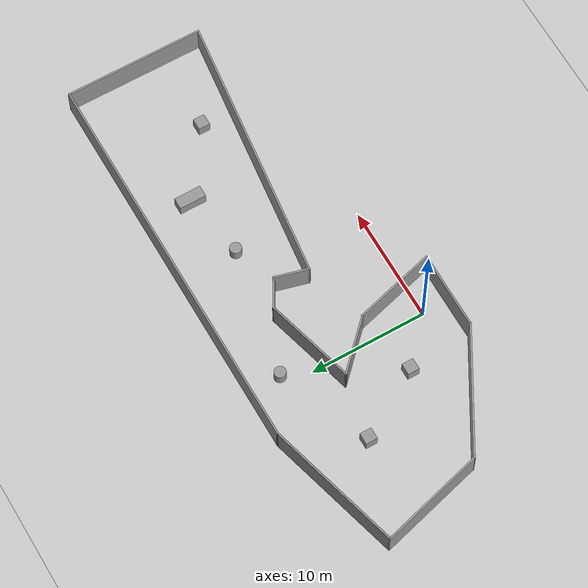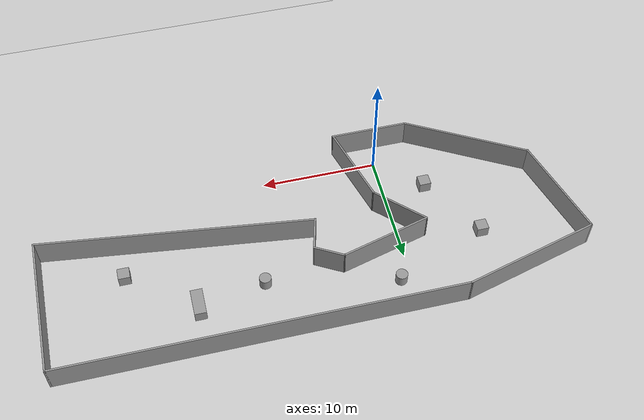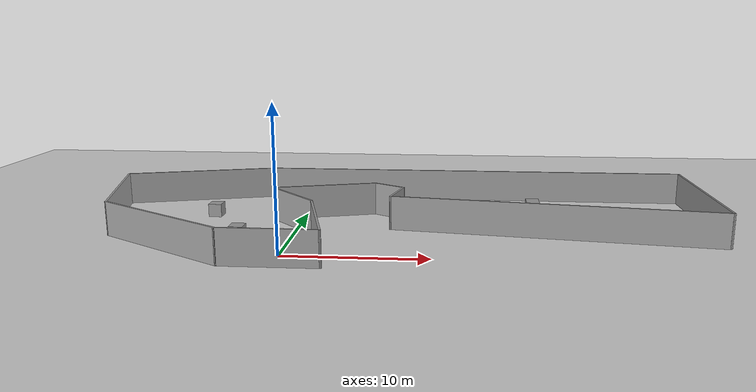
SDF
<sdf version="1.7">
 <world name="default">
  <light name="sun" type="directional">
   <pose>0 0 10 0 -0 0</pose>
   <diffuse>0.8 0.8 0.8 1</diffuse>
   <specular>0.2 0.2 0.2 1</specular>
   <attenuation>
    <range>1000</range>
    <constant>0.9</constant>
    <linear>0.01</linear>
    <quadratic>0.001</quadratic>
   </attenuation>
   <direction>-0.5 0.1 -0.9</direction>
   <spot><inner_angle>0</inner_angle><outer_angle>0</outer_angle><falloff>0</falloff></spot>
  </light>
  <model name="ground_plane">
   <static>1</static>
   <link name="link">
    <collision name="collision">
     <geometry><plane><normal>0 0 1</normal><size>100 100</size></plane></geometry>
     <surface>
      <contact><collide_bitmask>65535</collide_bitmask></contact>
      <friction><ode><mu>100</mu><mu2>50</mu2></ode></friction>
     </surface>
    </collision>
    <visual name="visual">
     <cast_shadows>0</cast_shadows>
     <geometry><plane><normal>0 0 1</normal><size>100 100</size></plane></geometry>
     <material>
      <script><uri>file://media/materials/scripts/gazebo.material</uri><name>Gazebo/Grey</name></script>
     </material>
    </visual>
   </link>
  </model>
  <gravity>0 0 -9.8</gravity>
  <magnetic_field>6e-06 2.3e-05 -4.2e-05</magnetic_field>
  <atmosphere type="adiabatic"/>
  <physics type="ode">
   <max_step_size>0.002</max_step_size>
   <real_time_factor>1</real_time_factor>
   <real_time_update_rate>500</real_time_update_rate>
  </physics>
  <scene><ambient>0.4 0.4 0.4 1</ambient><background>0.7 0.7 0.7 1</background><shadows>false</shadows></scene>
  <audio><device>default</device></audio>
  <spherical_coordinates>
   <surface_model>EARTH_WGS84</surface_model>
   <latitude_deg>0</latitude_deg>
   <longitude_deg>0</longitude_deg>
   <elevation>0</elevation>
   <heading_deg>0</heading_deg>
  </spherical_coordinates>
  <model name="Untitled">
   <pose>7.25591 6.59817 0 0 -0 0</pose>
   <link name="Wall_0">
    <collision name="Wall_0_Collision">
     <geometry><box><size>6.75 0.15 2.5</size></box></geometry>
     <pose>0 0 1.25 0 -0 0</pose>
    </collision>
    <visual name="Wall_0_Visual">
     <pose>0 0 1.25 0 -0 0</pose>
     <geometry><box><size>6.75 0.15 2.5</size></box></geometry>
     <material>
      <script><uri>file://media/materials/scripts/gazebo.material</uri><name>Gazebo/Grey</name></script>
      <ambient>1 1 1 1</ambient>
     </material>
     <meta><layer>0</layer></meta>
    </visual>
    <pose>-7.37591 -8.69817 0 0 -0 0</pose>
   </link>
   <link name="Wall_1">
    <collision name="Wall_1_Collision">
     <geometry><box><size>7.25 0.15 2.5</size></box></geometry>
     <pose>0 0 1.25 0 -0 0</pose>
    </collision>
    <visual name="Wall_1_Visual">
     <pose>0 0 1.25 0 -0 0</pose>
     <geometry><box><size>7.25 0.15 2.5</size></box></geometry>
     <material>
      <script><uri>file://media/materials/scripts/gazebo.material</uri><name>Gazebo/Grey</name></script>
      <ambient>1 1 1 1</ambient>
     </material>
     <meta><layer>0</layer></meta>
    </visual>
    <pose>-4.99472 -5.26913 0 0 -0 1.8326</pose>
   </link>
   <link name="Wall_10">
    <collision name="Wall_10_Collision">
     <geometry><box><size>34 0.15 2.5</size></box></geometry>
     <pose>0 0 1.25 0 -0 0</pose>
    </collision>
    <visual name="Wall_10_Visual">
     <pose>0 0 1.25 0 -0 0</pose>
     <geometry><box><size>34 0.15 2.5</size></box></geometry>
     <material>
      <script><uri>file://media/materials/scripts/gazebo.material</uri><name>Gazebo/Grey</name></script>
      <ambient>1 1 1 1</ambient>
     </material>
     <meta><layer>0</layer></meta>
    </visual>
    <pose>5.72717 8.70876 0 0 -0 0</pose>
   </link>
   <link name="Wall_11">
    <collision name="Wall_11_Collision">
     <geometry><box><size>12 0.15 2.5</size></box></geometry>
     <pose>0 0 1.25 0 -0 0</pose>
    </collision>
    <visual name="Wall_11_Visual">
     <pose>0 0 1.25 0 -0 0</pose>
     <geometry><box><size>12 0.15 2.5</size></box></geometry>
     <material>
      <script><uri>file://media/materials/scripts/gazebo.material</uri><name>Gazebo/Grey</name></script>
      <ambient>1 1 1 1</ambient>
     </material>
     <meta><layer>0</layer></meta>
    </visual>
    <pose>22.6522 2.78376 0 0 -0 -1.5708</pose>
   </link>
   <link name="Wall_12">
    <collision name="Wall_12_Collision">
     <geometry><box><size>23.4052 0.15 2.5</size></box></geometry>
     <pose>0 0 1.25 0 -0 0</pose>
    </collision>
    <visual name="Wall_12_Visual">
     <pose>0 0 1.25 0 -0 0</pose>
     <geometry><box><size>23.4052 0.15 2.5</size></box></geometry>
     <material>
      <script><uri>file://media/materials/scripts/gazebo.material</uri><name>Gazebo/Grey</name></script>
      <ambient>1 1 1 1</ambient>
     </material>
     <meta><layer>0</layer></meta>
    </visual>
    <pose>11.1145 -1.69812 0 0 -0 3.01716</pose>
   </link>
   <link name="Wall_2">
    <collision name="Wall_2_Collision">
     <geometry><box><size>5.25 0.15 2.5</size></box></geometry>
     <pose>0 0 1.25 0 -0 0</pose>
    </collision>
    <visual name="Wall_2_Visual">
     <pose>0 0 1.25 0 -0 0</pose>
     <geometry><box><size>5.25 0.15 2.5</size></box></geometry>
     <material>
      <script><uri>file://media/materials/scripts/gazebo.material</uri><name>Gazebo/Grey</name></script>
      <ambient>1 1 1 1</ambient>
     </material>
     <meta><layer>0</layer></meta>
    </visual>
    <pose>-7.71665 -0.036971 0 0 -0 2.35619</pose>
   </link>
   <link name="Wall_3">
    <collision name="Wall_3_Collision">
     <geometry><box><size>8 0.15 2.5</size></box></geometry>
     <pose>0 0 1.25 0 -0 0</pose>
    </collision>
    <visual name="Wall_3_Visual">
     <pose>0 0 1.25 0 -0 0</pose>
     <geometry><box><size>8 0.15 2.5</size></box></geometry>
     <material>
      <script><uri>file://media/materials/scripts/gazebo.material</uri><name>Gazebo/Grey</name></script>
      <ambient>1 1 1 1</ambient>
     </material>
     <meta><layer>0</layer></meta>
    </visual>
    <pose>-5.72851 2.78201 0 0 -0 0.261799</pose>
   </link>
   <link name="Wall_4">
    <collision name="Wall_4_Collision">
     <geometry><box><size>2.75 0.15 2.5</size></box></geometry>
     <pose>0 0 1.25 0 -0 0</pose>
    </collision>
    <visual name="Wall_4_Visual">
     <pose>0 0 1.25 0 -0 0</pose>
     <geometry><box><size>2.75 0.15 2.5</size></box></geometry>
     <material>
      <script><uri>file://media/materials/scripts/gazebo.material</uri><name>Gazebo/Grey</name></script>
      <ambient>1 1 1 1</ambient>
     </material>
     <meta><layer>0</layer></meta>
    </visual>
    <pose>-0.811421 3.14788 0 0 -0 -0.523599</pose>
   </link>
   <link name="Wall_5">
    <collision name="Wall_5_Collision">
     <geometry><box><size>3 0.15 2.5</size></box></geometry>
     <pose>0 0 1.25 0 -0 0</pose>
    </collision>
    <visual name="Wall_5_Visual">
     <pose>0 0 1.25 0 -0 0</pose>
     <geometry><box><size>3 0.15 2.5</size></box></geometry>
     <material>
      <script><uri>file://media/materials/scripts/gazebo.material</uri><name>Gazebo/Grey</name></script>
      <ambient>1 1 1 1</ambient>
     </material>
     <meta><layer>0</layer></meta>
    </visual>
    <pose>-0.054405 1.12144 0 0 -0 -1.8326</pose>
   </link>
   <link name="Wall_7">
    <collision name="Wall_7_Collision">
     <geometry><box><size>11.25 0.15 2.5</size></box></geometry>
     <pose>0 0 1.25 0 -0 0</pose>
    </collision>
    <visual name="Wall_7_Visual">
     <pose>0 0 1.25 0 -0 0</pose>
     <geometry><box><size>11.25 0.15 2.5</size></box></geometry>
     <material>
      <script><uri>file://media/materials/scripts/gazebo.material</uri><name>Gazebo/Grey</name></script>
      <ambient>1 1 1 1</ambient>
     </material>
     <meta><layer>0</layer></meta>
    </visual>
    <pose>-15.4824 -5.92317 0 0 -0 2.61799</pose>
   </link>
   <link name="Wall_8">
    <collision name="Wall_8_Collision">
     <geometry><box><size>9.25 0.15 2.5</size></box></geometry>
     <pose>0 0 1.25 0 -0 0</pose>
    </collision>
    <visual name="Wall_8_Visual">
     <pose>0 0 1.25 0 -0 0</pose>
     <geometry><box><size>9.25 0.15 2.5</size></box></geometry>
     <material>
      <script><uri>file://media/materials/scripts/gazebo.material</uri><name>Gazebo/Grey</name></script>
      <ambient>1 1 1 1</ambient>
     </material>
     <meta><layer>0</layer></meta>
    </visual>
    <pose>-21.4664 1.2468 0 0 -0 1.8326</pose>
   </link>
   <link name="Wall_9">
    <collision name="Wall_9_Collision">
     <geometry><box><size>12 0.15 2.5</size></box></geometry>
     <pose>0 0 1.25 0 -0 0</pose>
    </collision>
    <visual name="Wall_9_Visual">
     <pose>0 0 1.25 0 -0 0</pose>
     <geometry><box><size>12 0.15 2.5</size></box></geometry>
     <material>
      <script><uri>file://media/materials/scripts/gazebo.material</uri><name>Gazebo/Grey</name></script>
      <ambient>1 1 1 1</ambient>
     </material>
     <meta><layer>0</layer></meta>
    </visual>
    <pose>-16.9209 7.17526 0 0 -0 0.261799</pose>
   </link>
   <static>1</static>
  </model>
  <model name="unit_box">
   <pose>-3.68504 3.38233 0.499995 0 1e-05 0</pose>
   <link name="link">
    <inertial>
     <mass>1</mass>
     <inertia>
      <ixx>0.166667</ixx>
      <ixy>0</ixy>
      <ixz>0</ixz>
      <iyy>0.166667</iyy>
      <iyz>0</iyz>
      <izz>0.166667</izz>
     </inertia>
    </inertial>
    <collision name="collision"><geometry><box><size>1 1 1</size></box></geometry></collision>
    <visual name="visual">
     <geometry><box><size>1 1 1</size></box></geometry>
     <material>
      <script><name>Gazebo/Grey</name><uri>file://media/materials/scripts/gazebo.material</uri></script>
     </material>
    </visual>
   </link>
  </model>
  <model name="unit_box_0">
   <pose>-7.0387 9.1243 0.499995 -1e-05 -0 -0</pose>
   <link name="link">
    <inertial>
     <mass>1</mass>
     <inertia>
      <ixx>0.166667</ixx>
      <ixy>0</ixy>
      <ixz>0</ixz>
      <iyy>0.166667</iyy>
      <iyz>0</iyz>
      <izz>0.166667</izz>
     </inertia>
    </inertial>
    <collision name="collision"><geometry><box><size>1 1 1</size></box></geometry></collision>
    <visual name="visual">
     <geometry><box><size>1 1 1</size></box></geometry>
     <material>
      <script><name>Gazebo/Grey</name><uri>file://media/materials/scripts/gazebo.material</uri></script>
     </material>
    </visual>
   </link>
  </model>
  <model name="unit_cylinder">
   <pose>0.933284 12.3488 0.499992 -3e-06 -4e-06 -0</pose>
   <link name="link">
    <inertial>
     <mass>1</mass>
     <inertia><ixx>0.145833</ixx><ixy>0</ixy><ixz>0</ixz><iyy>0.145833</iyy><iyz>0</iyz><izz>0.125</izz></inertia>
    </inertial>
    <collision name="collision">
     <geometry><cylinder><radius>0.5</radius><length>1</length></cylinder></geometry>
    </collision>
    <visual name="visual">
     <geometry><cylinder><radius>0.5</radius><length>1</length></cylinder></geometry>
     <material>
      <script><name>Gazebo/Grey</name><uri>file://media/materials/scripts/gazebo.material</uri></script>
     </material>
    </visual>
   </link>
  </model>
  <model name="unit_cylinder_0">
   <pose>11.922 10.1023 0.499993 -3e-06 -3e-06 0</pose>
   <link name="link">
    <inertial>
     <mass>1</mass>
     <inertia><ixx>0.145833</ixx><ixy>0</ixy><ixz>0</ixz><iyy>0.145833</iyy><iyz>0</iyz><izz>0.125</izz></inertia>
    </inertial>
    <collision name="collision">
     <geometry><cylinder><radius>0.5</radius><length>1</length></cylinder></geometry>
    </collision>
    <visual name="visual">
     <geometry><cylinder><radius>0.5</radius><length>1</length></cylinder></geometry>
     <material>
      <script><name>Gazebo/Grey</name><uri>file://media/materials/scripts/gazebo.material</uri></script>
     </material>
    </visual>
   </link>
  </model>
  <model name="unit_box_1">
   <pose>17.6274 11.0497 0.499961 -3.4e-05 -0 -0</pose>
   <link name="link">
    <inertial>
     <mass>1</mass>
     <inertia>
      <ixx>0.166667</ixx>
      <ixy>0</ixy>
      <ixz>0</ixz>
      <iyy>0.166667</iyy>
      <iyz>0</iyz>
      <izz>0.166667</izz>
     </inertia>
    </inertial>
    <collision name="collision"><geometry><box><size>1 2.30801 1</size></box></geometry></collision>
    <visual name="visual">
     <geometry><box><size>1 2.30801 1</size></box></geometry>
     <material>
      <script><name>Gazebo/Grey</name><uri>file://media/materials/scripts/gazebo.material</uri></script>
     </material>
    </visual>
   </link>
  </model>
  <model name="unit_box_2">
   <pose>23.1563 6.95197 0.5 0 -0 0</pose>
   <link name="link">
    <inertial>
     <mass>1</mass>
     <inertia>
      <ixx>0.166667</ixx>
      <ixy>0</ixy>
      <ixz>0</ixz>
      <iyy>0.166667</iyy>
      <iyz>0</iyz>
      <izz>0.166667</izz>
     </inertia>
    </inertial>
    <collision name="collision"><geometry><box><size>1 1 1</size></box></geometry></collision>
    <visual name="visual">
     <geometry><box><size>1 1 1</size></box></geometry>
     <material>
      <script><name>Gazebo/Grey</name><uri>file://media/materials/scripts/gazebo.material</uri></script>
     </material>
    </visual>
   </link>
  </model>
 </world>
</sdf>
